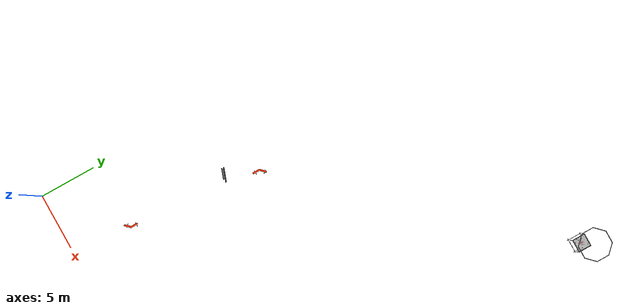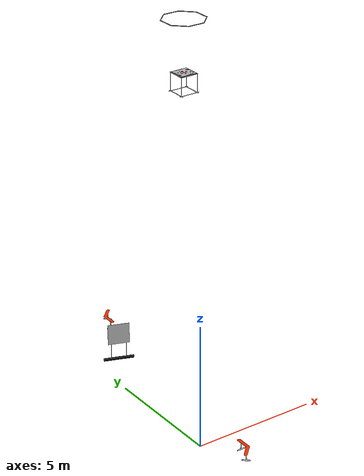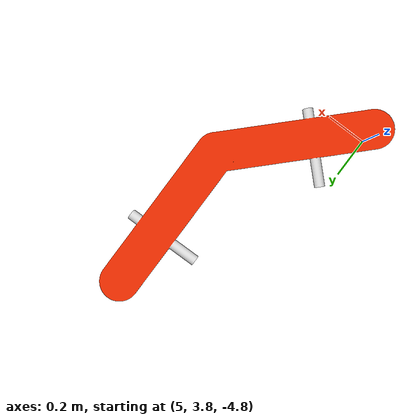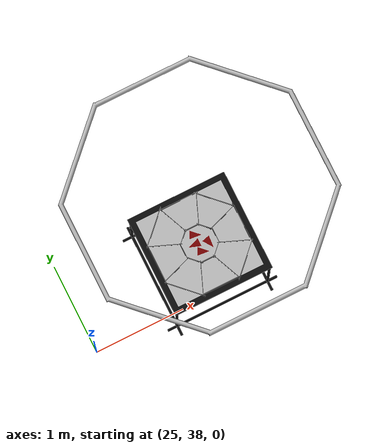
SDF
<sdf version="1.9">
 <world name="quali">
  <physics name="1ms" type="ode">
   <max_step_size>0.001</max_step_size>
   <real_time_factor>1.0</real_time_factor>
  </physics>
  <plugin filename="ignition-gazebo-physics-system" name="ignition::gazebo::systems::Physics"/>
  <plugin filename="ignition-gazebo-user-commands-system" name="ignition::gazebo::systems::UserCommands"/>
  <plugin filename="ignition-gazebo-scene-broadcaster-system" name="ignition::gazebo::systems::SceneBroadcaster"/>
  <plugin filename="ignition-gazebo-contact-system" name="ignition::gazebo::systems::Contact"/>
  <plugin filename="ignition-gazebo-buoyancy-system" name="ignition::gazebo::systems::Buoyancy">
   <uniform_fluid_density>997</uniform_fluid_density>
  </plugin>
  <plugin filename="ignition-gazebo-particle-emitter2-system" name="ignition::gazebo::systems::ParticleEmitter2"/>
  <scene><ambient>1.0 1.0 1.0</ambient><background>0.8 0.8 0.8</background><grid>true</grid></scene>
  <light type="directional" name="sun">
   <pose>0 0 10 0 0 0</pose>
   <diffuse>0.8 0.8 0.8 1</diffuse>
   <specular>0.2 0.2 0.2 1</specular>
   <attenuation>
    <range>1000</range>
    <constant>0.9</constant>
    <linear>0.01</linear>
    <quadratic>0.001</quadratic>
   </attenuation>
   <direction>-0.5 0.1 -0.9</direction>
  </light>
  <include>
   <name>lane_marker_45left_one</name>
   <uri>assets/common/lane_marker/lane_marker_45left.sdf</uri>
   <pose>5.5 4.3 -4.8 0 0 -2.35619</pose>
  </include>
  <include><uri>assets/tasks/buoy/buoy1.sdf</uri><pose>5.5 14 -4.8 0 0 -1.91986</pose></include>
  <include>
   <name>lane_marker_45left_two</name>
   <uri>assets/common/lane_marker/lane_marker_45left.sdf</uri>
   <pose>6.7 17 -4.8 0 0 0.785398</pose>
  </include>
  <include><uri>assets/tasks/octagon/octagon_table.sdf</uri><pose>26.7 39 -4.8 0 0 0</pose></include>
  <include><uri>assets/tasks/octagon/octagon.sdf</uri><pose>26.7 39 0 0 0 0</pose></include>
 </world>
</sdf>

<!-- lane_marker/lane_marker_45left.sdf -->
<sdf version="1.9">
    <model name="path_marker_45ccw">
        <static>true</static>
        <link name="path_marker_45ccw">
            <visual name="lane_marker_45left_visual">
                <geometry>
                    <mesh>
                        <uri>lane_marker_45left.dae</uri>
                    </mesh>
                </geometry>
            </visual>
            <collision name="lane_marker_45left_collision">
                <geometry>
                    <mesh>
                        <uri>lane_marker_45left.dae</uri>
                    </mesh>
                </geometry>
            </collision>
        </link>
    </model>
</sdf>

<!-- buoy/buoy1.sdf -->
<sdf version="1.9">
    <model name="buoy1">
        <static>true</static>
        <link name="link">
            <visual name="buoy1_visual">
                <geometry>
                    <mesh>
                        <uri>buoy1.dae</uri>
                    </mesh>
                </geometry>
            </visual>
            <collision name="buoy1_collision">
                <geometry>
                    <mesh>
                        <uri>buoy1.dae</uri>
                    </mesh>
                </geometry>
            </collision>
        </link>
    </model>
</sdf>

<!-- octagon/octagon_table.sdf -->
<sdf version="1.9">
    <model name="octagon_table">
        <static>true</static>
        <link name="octagon_table">
            <visual name="octagon_table_visual">
                <geometry>
                    <mesh>
                        <uri>octagon_table.dae</uri>
                    </mesh>
                </geometry>
            </visual>
            <collision name="octagon_table_visual">
                <geometry>
                    <mesh>
                        <uri>octagon_table.dae</uri>
                    </mesh>
                </geometry>
            </collision>
        </link>
    </model>
</sdf>

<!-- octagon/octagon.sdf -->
<sdf version="1.9">
    <model name="octagon">
        <static>true</static>
        <link name="octagon">
            <visual name="octagon_visual">
                <geometry>
                    <mesh>
                        <uri>octagon.dae</uri>
                    </mesh>
                </geometry>
            </visual>
            <collision name="octagon_visual">
                <geometry>
                    <mesh>
                        <uri>octagon.dae</uri>
                    </mesh>
                </geometry>
            </collision>
        </link>
    </model>
</sdf>
